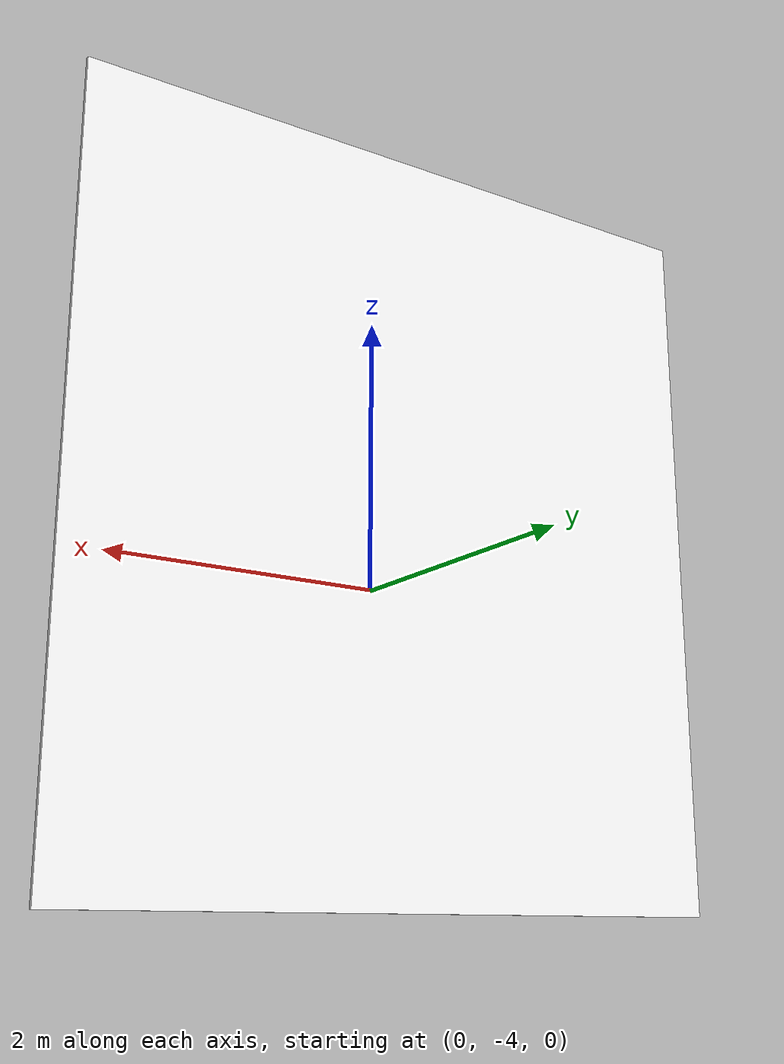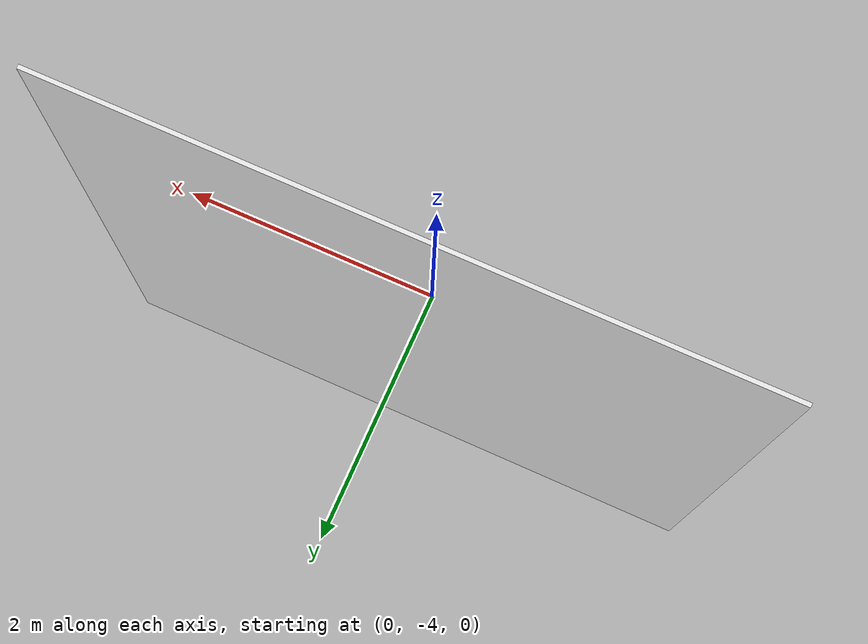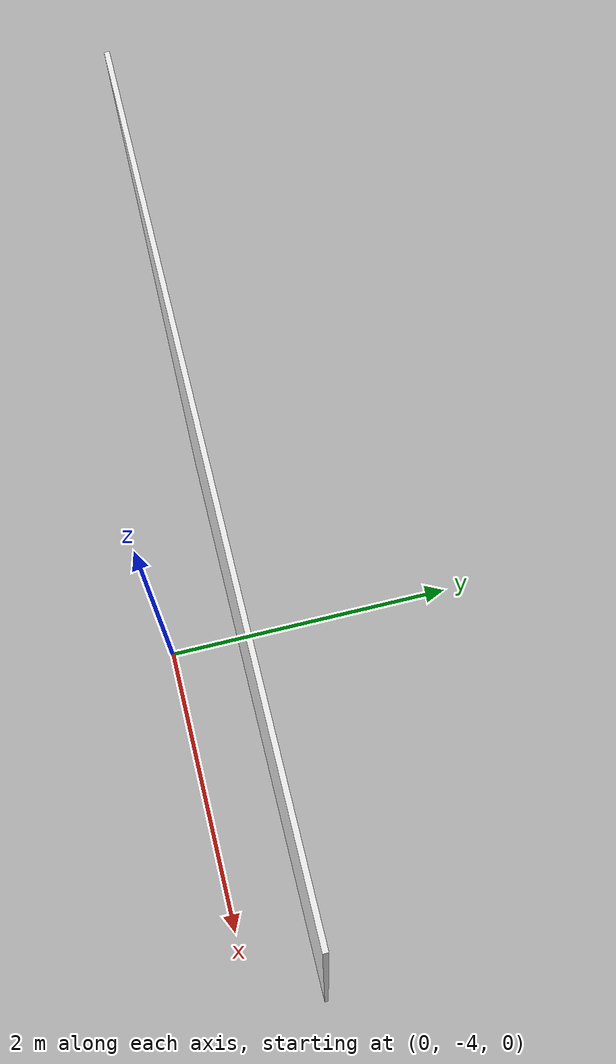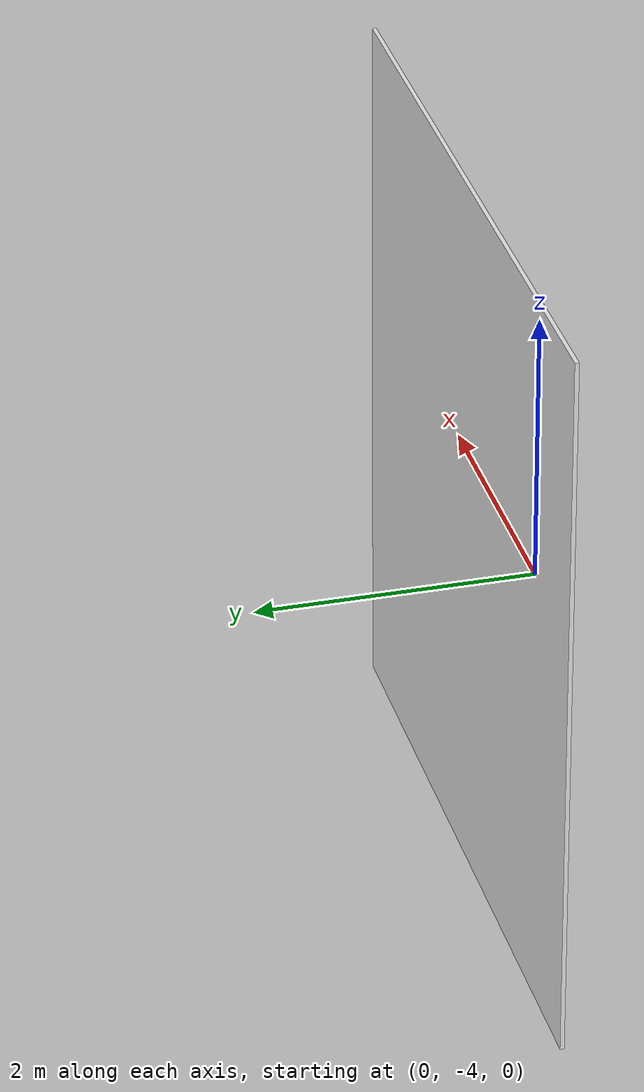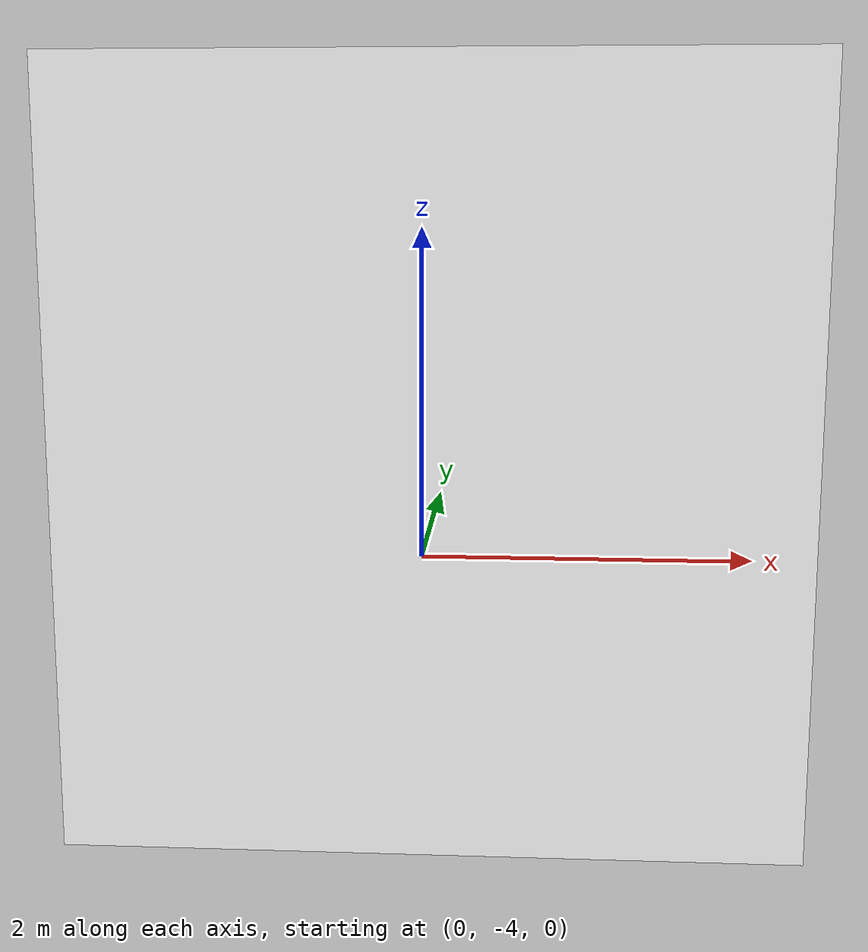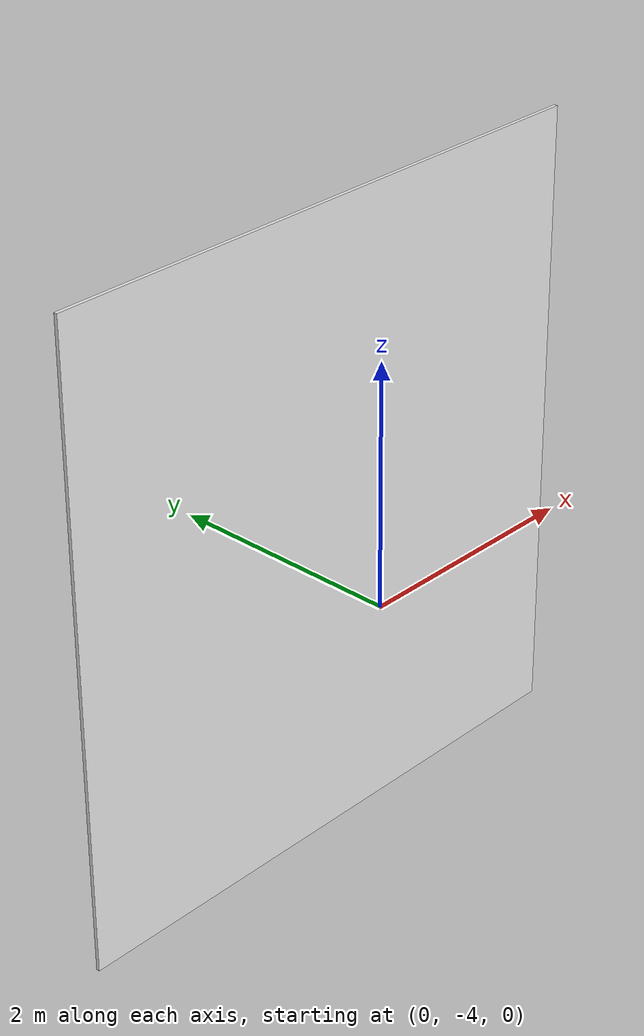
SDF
<?xml version="1.0"?>
<sdf version="1.7">

  <model name="table_top4">
    <link name="table_top4_link">
      <inertial>
        <mass>18.70</mass>
        <inertia>
          <ixx>0.79</ixx>
          <ixy>0</ixy>
          <ixz>0</ixz>
          <iyy>0.53</iyy>
          <iyz>0</iyz>
          <izz>1.2</izz>
        </inertia>
      </inertial>
    <visual name="bottom">
        <pose>0.0 -3.5 0.445 1.5708 0 0</pose>
        <geometry>
          <box>
            <size>4.98 5.26 0.03</size>
          </box>
        </geometry>
        <material>
          <diffuse>0.9 0.9 0.9 1.0</diffuse>
        </material>
      </visual>
      <collision name="bottom">
        <pose>0.0 -3.5 0.445 1.5708 0 0</pose>
        <geometry>
          <box>
            <size>4.98 5.26 0.03</size>
          </box>
        </geometry>
        <drake:proximity_properties>
          <drake:compliant_hydroelastic/>
          <drake:hydroelastic_modulus>1.0e6</drake:hydroelastic_modulus>
        </drake:proximity_properties>
      </collision>
    </link>
    <frame name="table_top4_center">
      <pose relative_to="table_top4_link">0 0 0.47 0 0 0</pose>
    </frame>
  </model>
</sdf>
